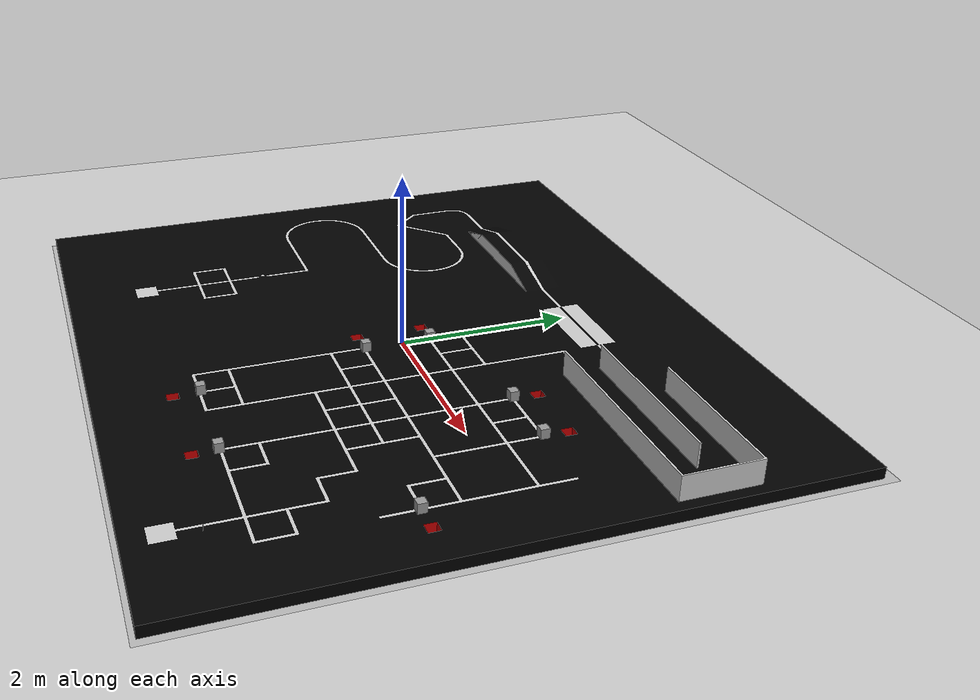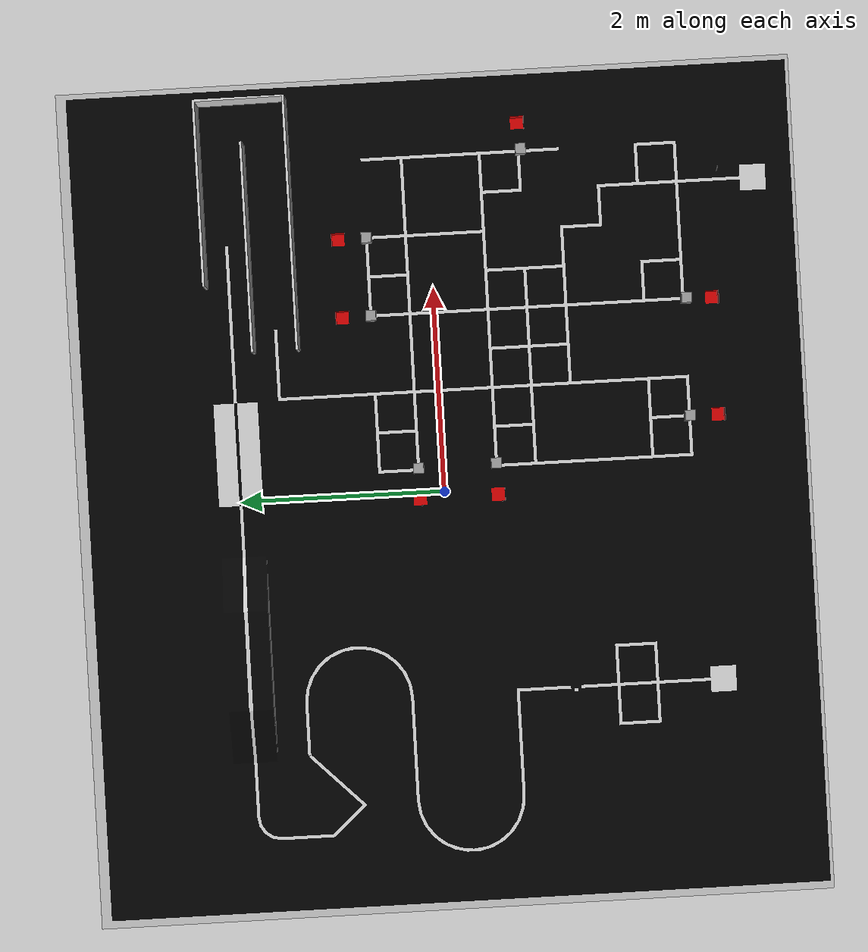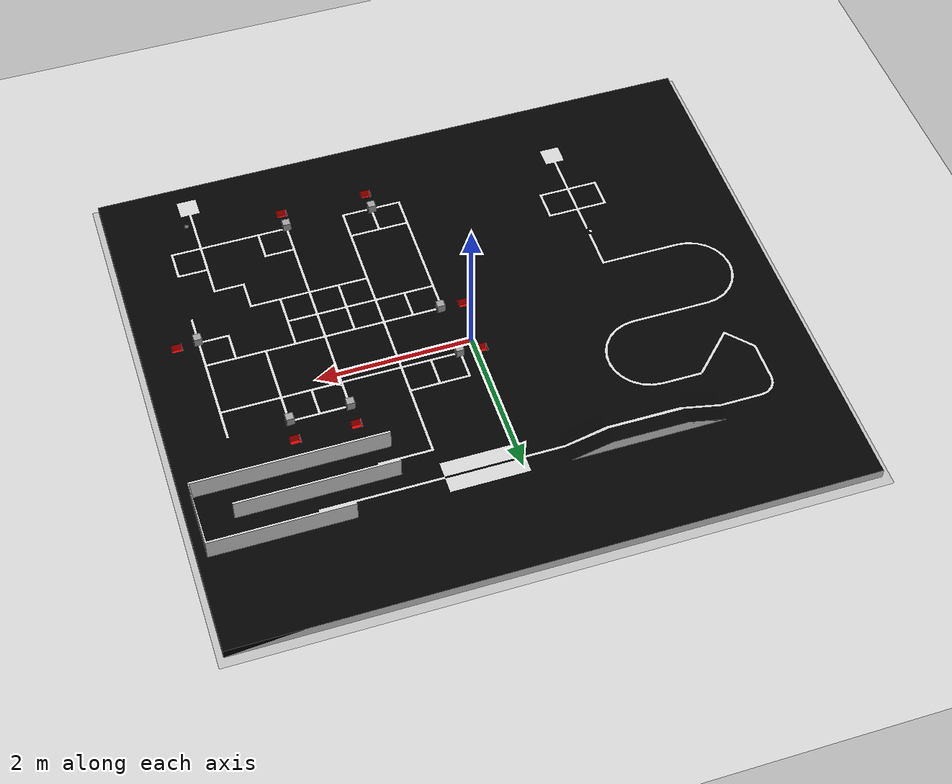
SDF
<sdf version="1.6">
 <world name="default">
  <light name="sun" type="directional">
   <pose>0 0 10 0 -0 0</pose>
   <diffuse>0.8 0.8 0.8 1</diffuse>
   <specular>0.2 0.2 0.2 1</specular>
   <attenuation>
    <range>1000</range>
    <constant>0.9</constant>
    <linear>0.01</linear>
    <quadratic>0.001</quadratic>
   </attenuation>
   <direction>-0.5 0.1 -0.9</direction>
  </light>
  <model name="ground_plane">
   <static>1</static>
   <link name="link">
    <collision name="collision">
     <geometry><plane><normal>0 0 1</normal><size>100 100</size></plane></geometry>
     <surface>
      <contact><collide_bitmask>65535</collide_bitmask></contact>
      <friction><ode><mu>100</mu><mu2>50</mu2></ode></friction>
     </surface>
    </collision>
    <visual name="visual">
     <cast_shadows>0</cast_shadows>
     <geometry><plane><normal>0 0 1</normal><size>100 100</size></plane></geometry>
     <material>
      <script><uri>file://media/materials/scripts/gazebo.material</uri><name>Gazebo/Grey</name></script>
     </material>
    </visual>
   </link>
  </model>
  <gravity>0 0 -9.8</gravity>
  <magnetic_field>6e-06 2.3e-05 -4.2e-05</magnetic_field>
  <atmosphere type="adiabatic"/>
  <physics name="default_physics" default="0" type="ode">
   <max_step_size>0.001</max_step_size>
   <real_time_factor>1</real_time_factor>
   <real_time_update_rate>1000</real_time_update_rate>
  </physics>
  <scene><ambient>0.4 0.4 0.4 1</ambient><background>0.7 0.7 0.7 1</background><shadows>1</shadows></scene>
  <spherical_coordinates>
   <surface_model>EARTH_WGS84</surface_model>
   <latitude_deg>0</latitude_deg>
   <longitude_deg>0</longitude_deg>
   <elevation>0</elevation>
   <heading_deg>0</heading_deg>
  </spherical_coordinates>
  <model name="unit_box_clone">
   <pose>-0.736617 1.06422 0.055878 -0.000497 -1e-06 -0.001217</pose>
   <link name="link">
    <inertial>
     <mass>1</mass>
     <inertia>
      <ixx>0.166667</ixx>
      <ixy>0</ixy>
      <ixz>0</ixz>
      <iyy>0.166667</iyy>
      <iyz>0</iyz>
      <izz>0.166667</izz>
     </inertia>
    </inertial>
    <collision name="collision">
     <geometry><box><size>0.098926 0.097933 0.108286</size></box></geometry>
    </collision>
    <visual name="visual">
     <geometry><box><size>0.098926 0.097933 0.108286</size></box></geometry>
     <material>
      <script><name>Gazebo/Grey</name><uri>file://media/materials/scripts/gazebo.material</uri></script>
     </material>
    </visual>
   </link>
  </model>
  <audio><device>default</device></audio>
  <model name="final_arena_urdf">
   <link name="arena">
    <inertial>
     <pose>3.9803 2.9843 6.2913 0 -0 0</pose>
     <mass>7400.8</mass>
     <inertia>
      <ixx>30213</ixx>
      <ixy>-2.6186</ixy>
      <ixz>-94.045</ixz>
      <iyy>69541</iyy>
      <iyz>38.433</iyz>
      <izz>39355</izz>
     </inertia>
    </inertial>
    <collision name="arena_collision">
     <geometry>
      <mesh>
       <scale>1 1 1</scale>
       <uri>/home/neha_kurian/catkin_ws/src/final_arena_urdf/meshes/final_arena.dae</uri>
      </mesh>
     </geometry>
    </collision>
    <visual name="arena_visual">
     <geometry>
      <mesh>
       <scale>1 1 1</scale>
       <uri>/home/neha_kurian/catkin_ws/src/final_arena_urdf/meshes/final_arena.dae</uri>
      </mesh>
     </geometry>
    </visual>
   </link>
   <pose>5.6e-05 0.000194 -0.000423 0 -0 1e-06</pose>
  </model>
  <model name="unit_box_clone_clone">
   <pose>0.604796 -2.4121 0.187274 -0.000497 -1e-06 0.000511</pose>
   <link name="link">
    <inertial>
     <mass>1</mass>
     <inertia>
      <ixx>0.166667</ixx>
      <ixy>0</ixy>
      <ixz>0</ixz>
      <iyy>0.166667</iyy>
      <iyz>0</iyz>
      <izz>0.166667</izz>
     </inertia>
    </inertial>
    <collision name="collision">
     <geometry><box><size>0.098926 0.097933 0.108286</size></box></geometry>
    </collision>
    <visual name="visual">
     <geometry><box><size>0.098926 0.097933 0.108286</size></box></geometry>
     <material>
      <script><name>Gazebo/Grey</name><uri>file://media/materials/scripts/gazebo.material</uri></script>
     </material>
    </visual>
   </link>
  </model>
  <light name="user_point_light_0" type="point">
   <pose>0.476155 -1.04836 1 0 -0 0</pose>
   <diffuse>0.5 0.5 0.5 1</diffuse>
   <specular>0.1 0.1 0.1 1</specular>
   <attenuation>
    <range>20</range>
    <constant>0.5</constant>
    <linear>0.01</linear>
    <quadratic>0.001</quadratic>
   </attenuation>
   <cast_shadows>0</cast_shadows>
   <direction>0 0 -1</direction>
  </light>
  <model name="unit_box_clone_clone_clone">
   <pose>1.74479 -2.44008 0.187281 0.001389 -1e-06 0.001414</pose>
   <link name="link">
    <inertial>
     <mass>1</mass>
     <inertia>
      <ixx>0.166667</ixx>
      <ixy>0</ixy>
      <ixz>0</ixz>
      <iyy>0.166667</iyy>
      <iyz>0</iyz>
      <izz>0.166667</izz>
     </inertia>
    </inertial>
    <collision name="collision">
     <geometry><box><size>0.098926 0.097933 0.108286</size></box></geometry>
    </collision>
    <visual name="visual">
     <geometry><box><size>0.098926 0.097933 0.108286</size></box></geometry>
     <material>
      <script><name>Gazebo/Grey</name><uri>file://media/materials/scripts/gazebo.material</uri></script>
     </material>
    </visual>
   </link>
  </model>
  <model name="unit_box_clone_clone_clone_clone">
   <pose>3.27436 -0.915446 0.186955 -0.000499 3e-06 0.005583</pose>
   <link name="link">
    <inertial>
     <mass>1</mass>
     <inertia>
      <ixx>0.166667</ixx>
      <ixy>0</ixy>
      <ixz>0</ixz>
      <iyy>0.166667</iyy>
      <iyz>0</iyz>
      <izz>0.166667</izz>
     </inertia>
    </inertial>
    <collision name="collision">
     <geometry><box><size>0.098926 0.097933 0.108286</size></box></geometry>
    </collision>
    <visual name="visual">
     <geometry><box><size>0.098926 0.097933 0.108286</size></box></geometry>
     <material>
      <script><name>Gazebo/Grey</name><uri>file://media/materials/scripts/gazebo.material</uri></script>
     </material>
    </visual>
   </link>
  </model>
  <model name="unit_box_clone_clone_clone_clone_0">
   <pose>2.49746 0.622055 0.18619 -0.000498 -2e-06 -0.001171</pose>
   <link name="link">
    <inertial>
     <mass>1</mass>
     <inertia>
      <ixx>0.166667</ixx>
      <ixy>0</ixy>
      <ixz>0</ixz>
      <iyy>0.166667</iyy>
      <iyz>0</iyz>
      <izz>0.166667</izz>
     </inertia>
    </inertial>
    <collision name="collision">
     <geometry><box><size>0.098926 0.097933 0.108286</size></box></geometry>
    </collision>
    <visual name="visual">
     <geometry><box><size>0.098926 0.097933 0.108286</size></box></geometry>
     <material>
      <script><name>Gazebo/Grey</name><uri>file://media/materials/scripts/gazebo.material</uri></script>
     </material>
    </visual>
   </link>
  </model>
  <model name="unit_box_clone_clone_clone_clone_1">
   <pose>1.74202 0.618618 0.186191 -0.000496 -6e-06 -0.001765</pose>
   <link name="link">
    <inertial>
     <mass>1</mass>
     <inertia>
      <ixx>0.166667</ixx>
      <ixy>0</ixy>
      <ixz>0</ixz>
      <iyy>0.166667</iyy>
      <iyz>0</iyz>
      <izz>0.166667</izz>
     </inertia>
    </inertial>
    <collision name="collision">
     <geometry><box><size>0.098926 0.097933 0.108286</size></box></geometry>
    </collision>
    <visual name="visual">
     <geometry><box><size>0.098926 0.097933 0.108286</size></box></geometry>
     <material>
      <script><name>Gazebo/Grey</name><uri>file://media/materials/scripts/gazebo.material</uri></script>
     </material>
    </visual>
   </link>
  </model>
  <model name="unit_box_clone_clone_clone_clone_2">
   <pose>0.249895 -0.512001 0.18633 -0.000502 -2e-06 -0.000304</pose>
   <link name="link">
    <inertial>
     <mass>1</mass>
     <inertia>
      <ixx>0.166667</ixx>
      <ixy>0</ixy>
      <ixz>0</ixz>
      <iyy>0.166667</iyy>
      <iyz>0</iyz>
      <izz>0.166667</izz>
     </inertia>
    </inertial>
    <collision name="collision">
     <geometry><box><size>0.098926 0.097933 0.108286</size></box></geometry>
    </collision>
    <visual name="visual">
     <geometry><box><size>0.098926 0.097933 0.108286</size></box></geometry>
     <material>
      <script><name>Gazebo/Grey</name><uri>file://media/materials/scripts/gazebo.material</uri></script>
     </material>
    </visual>
   </link>
  </model>
  <model name="unit_box_clone_clone_clone_clone_3">
   <pose>0.240763 0.240324 0.186389 -0.000498 1e-06 0.001877</pose>
   <link name="link">
    <inertial>
     <mass>1</mass>
     <inertia>
      <ixx>0.166667</ixx>
      <ixy>0</ixy>
      <ixz>0</ixz>
      <iyy>0.166667</iyy>
      <iyz>0</iyz>
      <izz>0.166667</izz>
     </inertia>
    </inertial>
    <collision name="collision">
     <geometry><box><size>0.098926 0.097933 0.108286</size></box></geometry>
    </collision>
    <visual name="visual">
     <geometry><box><size>0.098926 0.097933 0.108286</size></box></geometry>
     <material>
      <script><name>Gazebo/Grey</name><uri>file://media/materials/scripts/gazebo.material</uri></script>
     </material>
    </visual>
   </link>
  </model>
  <light name="user_point_light_1" type="point">
   <pose>2.76138 -0.179991 1 0 -0 0</pose>
   <diffuse>0.5 0.5 0.5 1</diffuse>
   <specular>0.1 0.1 0.1 1</specular>
   <attenuation>
    <range>20</range>
    <constant>0.5</constant>
    <linear>0.01</linear>
    <quadratic>0.001</quadratic>
   </attenuation>
   <cast_shadows>0</cast_shadows>
   <direction>0 0 -1</direction>
  </light>
  <model name="Marker10">
   <static>1</static>
   <link name="link">
    <visual name="visual">
     <geometry><mesh><uri>model://marker10/meshes/Marker0.dae</uri></mesh></geometry>
    </visual>
   </link>
   <pose>2.9828 -2.8092 0.164311 0 0 -1.78408</pose>
  </model>
 </world>
</sdf>
